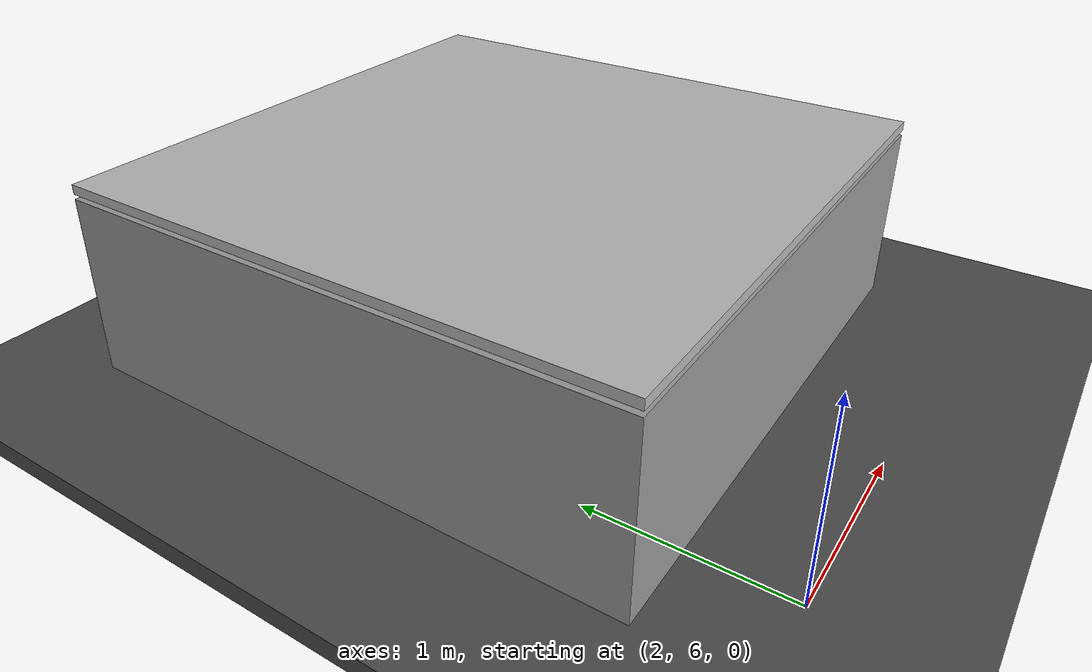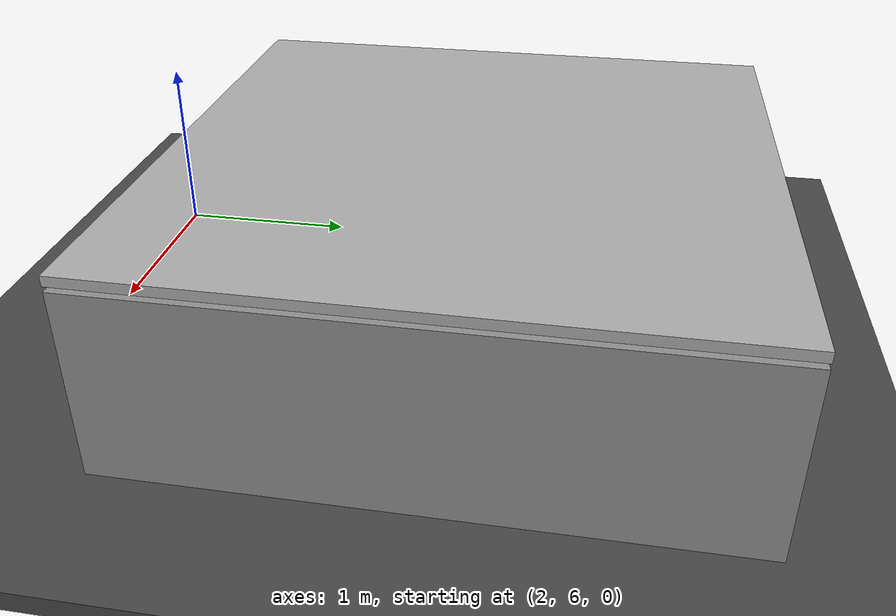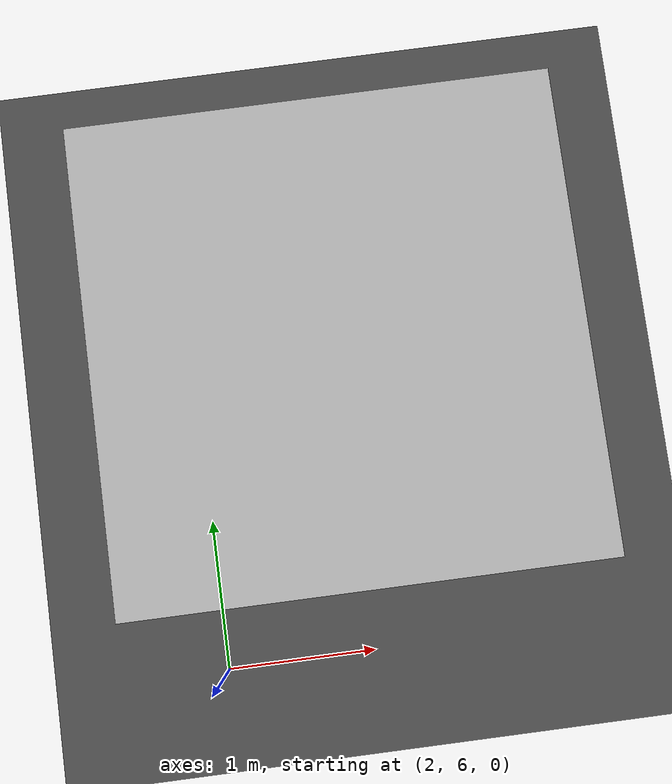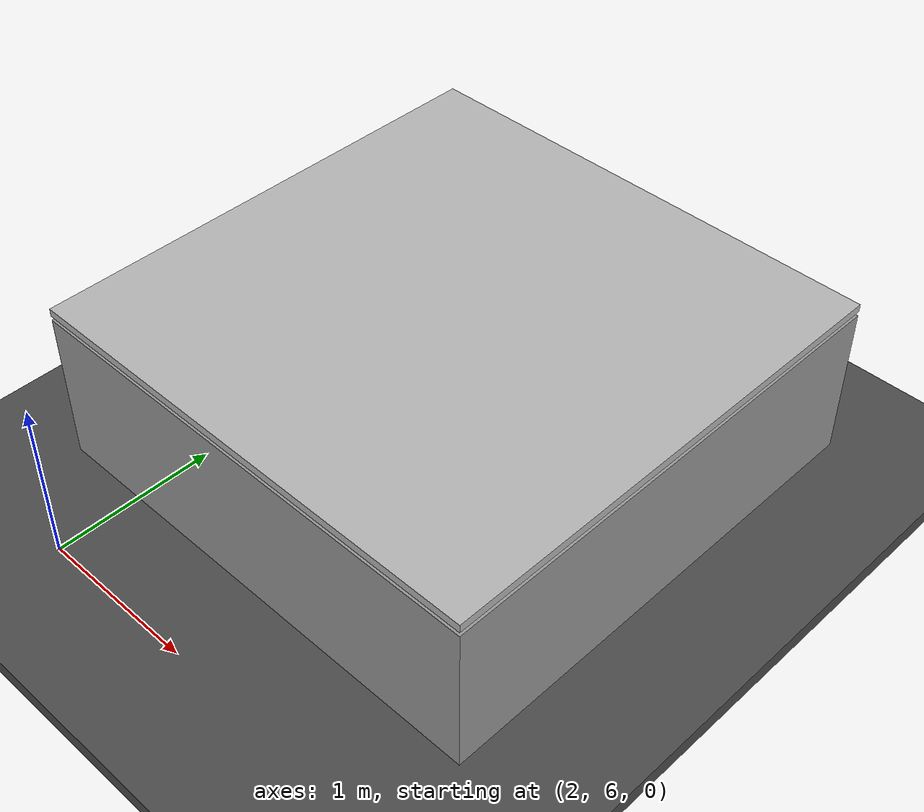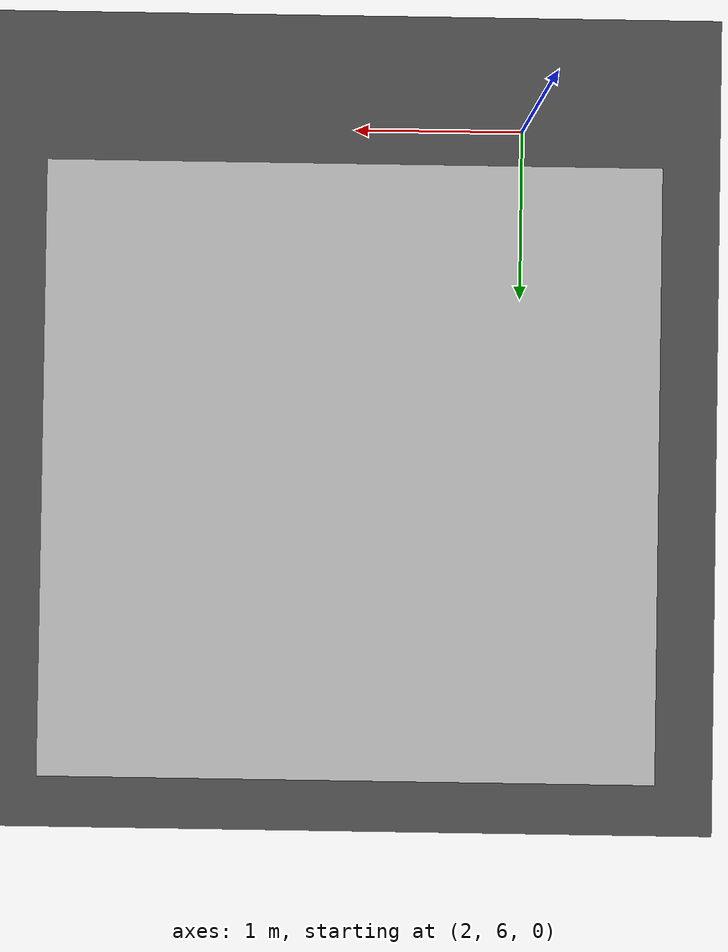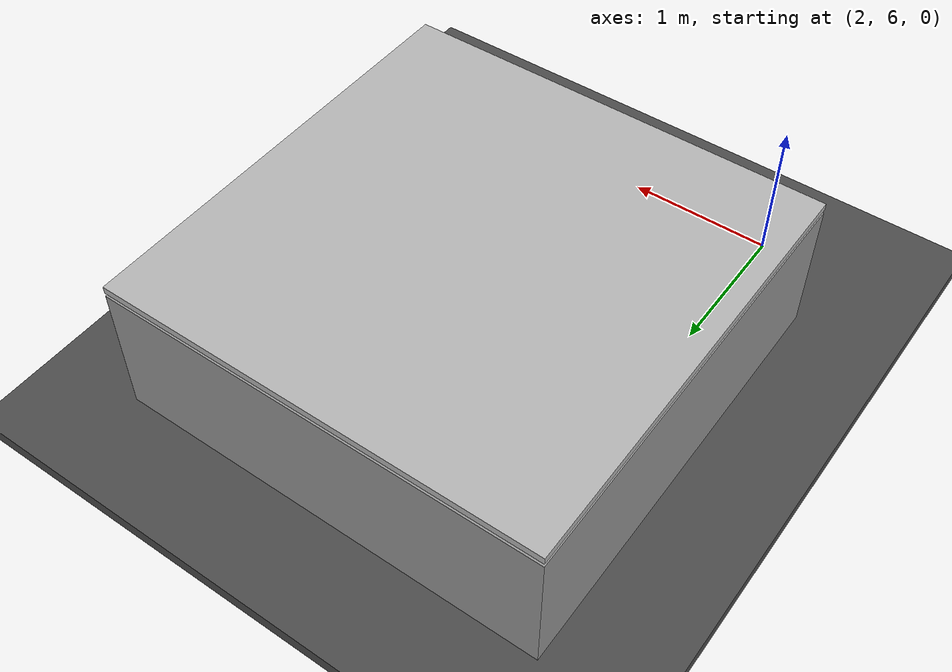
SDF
<?xml version="1.0" ?>
<sdf version="1.4">
  <world name="default">
    <include>
      <uri>model://ground_plane</uri>
    </include>
    <include>
      <uri>model://sun</uri>
    </include>

	<scene>
	  <sky>
	    <clouds>
	      <speed>12</speed>
	    </clouds>
	  </sky>
	</scene>

    <!-- Only one ROS interface plugin is required per world, as any other plugin can connect a Gazebo
         topic to a ROS topic (or vise versa). -->
    <plugin name="ros_interface_plugin" filename="librotors_gazebo_ros_interface_plugin.so"/>
    <spherical_coordinates>
      <surface_model>EARTH_WGS84</surface_model>
      <latitude_deg>47.3667</latitude_deg>
      <longitude_deg>8.5500</longitude_deg>
      <elevation>500.0</elevation>
      <heading_deg>0</heading_deg>
    </spherical_coordinates>

    <!-- Rovi3 opgave -->
    <model name='asphalt_plane'>
      <link name='link'>
        <self_collide>0</self_collide>
        <enable_wind>0</enable_wind>
        <kinematic>0</kinematic>
        <pose frame=''>0 0 0 0 -0 0</pose>
        <visual name='visual'>
          <cast_shadows>0</cast_shadows>
          <geometry>
            <box>
              <size>100 100 0.1</size>
            </box>
          </geometry>
          <material>
            <script>
              <uri>model://asphalt_plane/materials/scripts</uri>
              <uri>model://asphalt_plane/materials/textures</uri>
              <name>vrc/asphalt</name>
            </script>
            <shader type='pixel'/>
          </material>
          <pose frame=''>0 0 0 0 -0 0</pose>
          <transparency>0</transparency>
        </visual>
        <collision name='collision'>
          <laser_retro>0</laser_retro>
          <max_contacts>10</max_contacts>
          <pose frame=''>0 0 0 0 -0 0</pose>
          <geometry>
            <box>
              <size>20 20 0.1</size>
            </box>
          </geometry>
          <surface>
            <friction>
              <ode>
                <mu>1</mu>
                <mu2>1</mu2>
                <fdir1>0 0 0</fdir1>
                <slip1>0</slip1>
                <slip2>0</slip2>
              </ode>
              <torsional>
                <coefficient>1</coefficient>
                <patch_radius>0</patch_radius>
                <surface_radius>0</surface_radius>
                <use_patch_radius>1</use_patch_radius>
                <ode>
                  <slip>0</slip>
                </ode>
              </torsional>
            </friction>
            <bounce>
              <restitution_coefficient>0</restitution_coefficient>
              <threshold>1e+06</threshold>
            </bounce>
            <contact>
              <collide_without_contact>0</collide_without_contact>
              <collide_without_contact_bitmask>1</collide_without_contact_bitmask>
              <collide_bitmask>1</collide_bitmask>
              <ode>
                <soft_cfm>0</soft_cfm>
                <soft_erp>0.2</soft_erp>
                <kp>1e+13</kp>
                <kd>1</kd>
                <max_vel>0.01</max_vel>
                <min_depth>0</min_depth>
              </ode>
              <bullet>
                <split_impulse>1</split_impulse>
                <split_impulse_penetration_threshold>-0.01</split_impulse_penetration_threshold>
                <soft_cfm>0</soft_cfm>
                <soft_erp>0.2</soft_erp>
                <kp>1e+13</kp>
                <kd>1</kd>
              </bullet>
            </contact>
          </surface>
        </collision>
      </link>
      <static>1</static>
      <allow_auto_disable>1</allow_auto_disable>
      <pose frame=''>0 0 0 0 -0 0</pose>
    </model>

    <model name='marker_box'>
      <link name='link'>
        <inertial>
          <mass>1.58197</mass>
          <inertia>
            <ixx>0.235209</ixx>
            <ixy>0</ixy>
            <ixz>0</ixz>
            <iyy>0.524099</iyy>
            <iyz>0</iyz>
            <izz>0.552551</izz>
          </inertia>
          <pose frame=''>0 0 0 0 -0 0</pose>
        </inertial>
        <self_collide>0</self_collide>
        <enable_wind>0</enable_wind>
        <kinematic>0</kinematic>
        <pose frame=''>0 0 0 0 -0 0</pose>
        <visual name='visual'>
          <geometry>
            <box>
              <size>3 3 1</size>
            </box>
          </geometry>
          <material>
            <script>
              <name>Gazebo/Grey</name>
              <uri>file://media/materials/scripts/gazebo.material</uri>
            </script>
            <shader type='pixel'/>
          </material>
          <pose frame=''>0 0 0 0 -0 0</pose>
          <transparency>0</transparency>
          <cast_shadows>1</cast_shadows>
        </visual>
        <collision name='collision'>
          <laser_retro>0</laser_retro>
          <max_contacts>10</max_contacts>
          <pose frame=''>0 0 0 0 -0 0</pose>
          <geometry>
            <box>
              <size>3 3 1</size>
            </box>
          </geometry>
          <surface>
            <friction>
              <ode>
                <mu>1</mu>
                <mu2>1</mu2>
                <fdir1>0 0 0</fdir1>
                <slip1>0</slip1>
                <slip2>0</slip2>
              </ode>
              <torsional>
                <coefficient>1</coefficient>
                <patch_radius>0</patch_radius>
                <surface_radius>0</surface_radius>
                <use_patch_radius>1</use_patch_radius>
                <ode>
                  <slip>0</slip>
                </ode>
              </torsional>
            </friction>
            <bounce>
              <restitution_coefficient>0</restitution_coefficient>
              <threshold>1e+06</threshold>
            </bounce>
            <contact>
              <collide_without_contact>0</collide_without_contact>
              <collide_without_contact_bitmask>1</collide_without_contact_bitmask>
              <collide_bitmask>1</collide_bitmask>
              <ode>
                <soft_cfm>0</soft_cfm>
                <soft_erp>0.2</soft_erp>
                <kp>1e+13</kp>
                <kd>1</kd>
                <max_vel>0.01</max_vel>
                <min_depth>0</min_depth>
              </ode>
              <bullet>
                <split_impulse>1</split_impulse>
                <split_impulse_penetration_threshold>-0.01</split_impulse_penetration_threshold>
                <soft_cfm>0</soft_cfm>
                <soft_erp>0.2</soft_erp>
                <kp>1e+13</kp>
                <kd>1</kd>
              </bullet>
            </contact>
          </surface>
        </collision>
      </link>
      <static>0</static>
      <allow_auto_disable>1</allow_auto_disable>
      <pose frame=''>3 8 0.5 0 -0 0</pose>
    </model>

    <model name='rmurv2_marker'>
      <static>1</static>
      <link name='link'>
        <collision name='collision'>
          <geometry>
            <box>
              <size>3 3 0.05</size>
            </box>
          </geometry>
          <max_contacts>10</max_contacts>
          <surface>
            <contact>
              <ode/>
            </contact>
            <bounce/>
            <friction>
              <torsional>
                <ode/>
              </torsional>
              <ode/>
            </friction>
          </surface>
        </collision>
        <visual name='visual'>
          <pose frame=''>0 0 0 0 -0 0</pose>
          <cast_shadows>0</cast_shadows>
          <geometry>
            <box>
              <size>3 3 0.05</size>
            </box>
          </geometry>
          <material>
            <script>
              <uri>model://rmurv2_marker/materials/scripts</uri>
              <uri>model://rmurv2_marker/materials/textures</uri>
              <name>vrc/marker</name>
            </script>
          </material>
        </visual>
        <self_collide>0</self_collide>
        <enable_wind>0</enable_wind>
        <kinematic>0</kinematic>
      </link>
      <pose frame=''>3 8 1.051 0 -0 0</pose>
    </model>
    <!-- Rovi3 opgave -->

    <physics type='ode'>
      <ode>
        <solver>
          <type>quick</type>
          <iters>1000</iters>
          <sor>1.3</sor>
        </solver>
        <constraints>
          <cfm>0</cfm>
          <erp>0.2</erp>
          <contact_max_correcting_vel>100</contact_max_correcting_vel>
          <contact_surface_layer>0.001</contact_surface_layer>
        </constraints>
      </ode>
      <max_step_size>0.01</max_step_size>
      <real_time_factor>1</real_time_factor>
      <real_time_update_rate>100</real_time_update_rate>
      <gravity>0 0 -9.8</gravity>
    </physics>
  </world>
</sdf>
